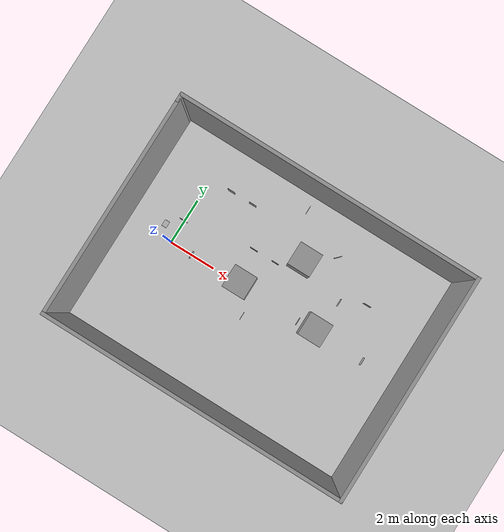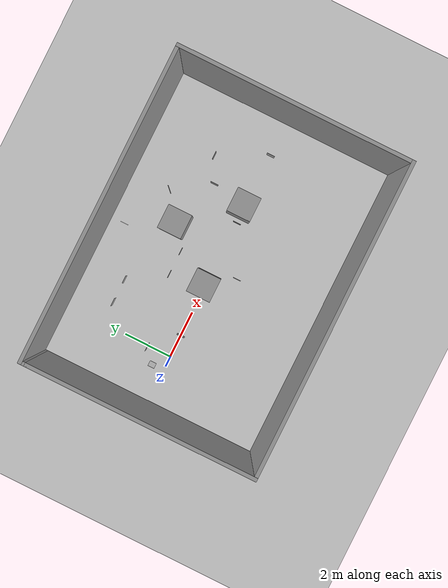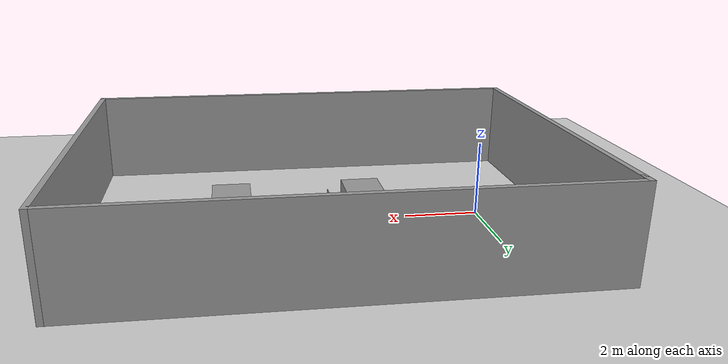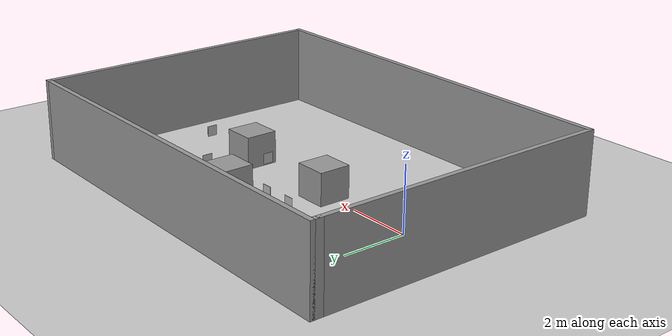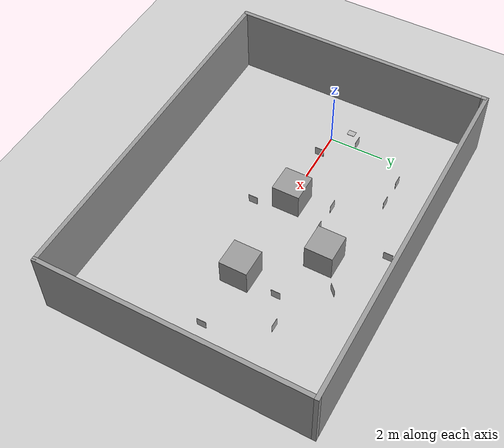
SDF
<sdf version="1.6">
 <world name="default">
  <light name="sun" type="directional">
   <pose>0 0 10 0 -0 0</pose>
   <diffuse>0.8 0.8 0.8 1</diffuse>
   <specular>0.2 0.2 0.2 1</specular>
   <attenuation>
    <range>1000</range>
    <constant>0.9</constant>
    <linear>0.01</linear>
    <quadratic>0.001</quadratic>
   </attenuation>
   <direction>-0.5 0.1 -0.9</direction>
  </light>
  <model name="ground_plane">
   <static>1</static>
   <link name="link">
    <collision name="collision">
     <geometry><plane><normal>0 0 1</normal><size>100 100</size></plane></geometry>
     <surface><friction><ode><mu>100</mu><mu2>50</mu2></ode></friction></surface>
    </collision>
    <visual name="visual">
     <cast_shadows>0</cast_shadows>
     <geometry><plane><normal>0 0 1</normal><size>100 100</size></plane></geometry>
     <material>
      <script><uri>file://media/materials/scripts/gazebo.material</uri><name>Gazebo/Grey</name></script>
     </material>
    </visual>
   </link>
  </model>
  <gravity>0 0 -9.8</gravity>
  <magnetic_field>6e-06 2.3e-05 -4.2e-05</magnetic_field>
  <atmosphere type="adiabatic"/>
  <physics name="default_physics" default="0" type="ode">
   <max_step_size>0.001</max_step_size>
   <real_time_factor>1</real_time_factor>
   <real_time_update_rate>1000</real_time_update_rate>
  </physics>
  <scene><ambient>0.4 0.4 0.4 1</ambient><background>0.7 0.7 0.7 1</background><shadows>1</shadows></scene>
  <audio><device>default</device></audio>
  <spherical_coordinates>
   <surface_model>EARTH_WGS84</surface_model>
   <latitude_deg>0</latitude_deg>
   <longitude_deg>0</longitude_deg>
   <elevation>0</elevation>
   <heading_deg>0</heading_deg>
  </spherical_coordinates>
  <model name="tablero">
   <static>1</static>
   <link name="robot_link">
    <visual name="front_visual">
     <pose>0 0 0.0025 0 -0 0</pose>
     <geometry><box><size>0.22 0.28 0.005</size></box></geometry>
     <material>
      <script>
       <uri>model://tag_0/materials/scripts</uri>
       <uri>model://tag_0/materials/textures</uri>
       <name>patron_aje</name>
      </script>
     </material>
    </visual>
    <visual name="rear_visual">
     <pose>0 0 -0.0025 0 -0 0</pose>
     <geometry><box><size>0.22 0.28 0.005</size></box></geometry>
     <material>
      <script>
       <uri>model://tag_0/materials/scripts</uri>
       <uri>model://tag_0/materials/textures</uri>
       <name>patron_aje</name>
      </script>
     </material>
    </visual>
   </link>
   <pose>-0.604925 0.518921 0 0 -0 0</pose>
  </model>
  <model name="Aruco tag0">
   <static>1</static>
   <link name="robot_link">
    <visual name="front_visual">
     <pose>0 0 0.0025 0 -0 0</pose>
     <geometry><box><size>0.33 0.33 0.005</size></box></geometry>
     <material>
      <script>
       <uri>model://tag_0/materials/scripts</uri>
       <uri>model://tag_0/materials/textures</uri>
       <name>aruco_tag_0</name>
      </script>
     </material>
    </visual>
    <visual name="rear_visual">
     <pose>0 0 -0.0025 0 -0 0</pose>
     <geometry><box><size>0.33 0.33 0.005</size></box></geometry>
     <material>
      <script>
       <uri>model://tag_0/materials/scripts</uri>
       <uri>model://tag_0/materials/textures</uri>
       <name>aruco_tag_0</name>
      </script>
     </material>
    </visual>
   </link>
   <pose>1 0 0.3 -1.57 -1.57 1.57</pose>
  </model>
  <model name="Aruco tag1">
   <static>1</static>
   <link name="robot_link">
    <visual name="front_visual">
     <pose>0 0 0.0025 0 -0 0</pose>
     <geometry><box><size>0.33 0.33 0.005</size></box></geometry>
     <material>
      <script>
       <uri>model://tag_1/materials/scripts</uri>
       <uri>model://tag_1/materials/textures</uri>
       <name>aruco_tag_1</name>
      </script>
     </material>
    </visual>
    <visual name="rear_visual">
     <pose>0 0 -0.0025 0 -0 0</pose>
     <geometry><box><size>0.33 0.33 0.005</size></box></geometry>
     <material>
      <script>
       <uri>model://tag_1/materials/scripts</uri>
       <uri>model://tag_1/materials/textures</uri>
       <name>aruco_tag_1</name>
      </script>
     </material>
    </visual>
   </link>
   <pose>4 -1 0.3 -1.57 -1.57 1.57</pose>
  </model>
  <model name="Aruco tag2">
   <static>1</static>
   <link name="robot_link">
    <visual name="front_visual">
     <pose>0 0 0.0025 0 -0 0</pose>
     <geometry><box><size>0.33 0.33 0.005</size></box></geometry>
     <material>
      <script>
       <uri>model://tag_2/materials/scripts</uri>
       <uri>model://tag_2/materials/textures</uri>
       <name>aruco_tag_2</name>
      </script>
     </material>
    </visual>
    <visual name="rear_visual">
     <pose>0 0 -0.0025 0 -0 0</pose>
     <geometry><box><size>0.33 0.33 0.005</size></box></geometry>
     <material>
      <script>
       <uri>model://tag_2/materials/scripts</uri>
       <uri>model://tag_2/materials/textures</uri>
       <name>aruco_tag_2</name>
      </script>
     </material>
    </visual>
   </link>
   <pose>6 0 0.3 -1.57 -1.57 1.57</pose>
  </model>
  <model name="Aruco tag4">
   <static>1</static>
   <link name="robot_link">
    <visual name="front_visual">
     <pose>0 0 0.0025 0 -0 0</pose>
     <geometry><box><size>0.33 0.33 0.005</size></box></geometry>
     <material>
      <script>
       <uri>model://tag_4/materials/scripts</uri>
       <uri>model://tag_4/materials/textures</uri>
       <name>aruco_tag_4</name>
      </script>
     </material>
    </visual>
    <visual name="rear_visual">
     <pose>0 0 -0.0025 0 -0 0</pose>
     <geometry><box><size>0.33 0.33 0.005</size></box></geometry>
     <material>
      <script>
       <uri>model://tag_4/materials/scripts</uri>
       <uri>model://tag_4/materials/textures</uri>
       <name>aruco_tag_4</name>
      </script>
     </material>
    </visual>
   </link>
   <pose>9 0 0.3 -1.57 -1.57 1.57</pose>
  </model>
  <model name="Aruco tag5">
   <static>1</static>
   <link name="robot_link">
    <visual name="front_visual">
     <pose>0 0 0.0025 0 -0 0</pose>
     <geometry><box><size>0.33 0.33 0.005</size></box></geometry>
     <material>
      <script>
       <uri>model://tag_5/materials/scripts</uri>
       <uri>model://tag_5/materials/textures</uri>
       <name>aruco_tag_5</name>
      </script>
     </material>
    </visual>
    <visual name="rear_visual">
     <pose>0 0 -0.0025 0 -0 0</pose>
     <geometry><box><size>0.33 0.33 0.005</size></box></geometry>
     <material>
      <script>
       <uri>model://tag_5/materials/scripts</uri>
       <uri>model://tag_5/materials/textures</uri>
       <name>aruco_tag_5</name>
      </script>
     </material>
    </visual>
   </link>
   <pose>8 2 0.3 -1.57 -1.57 0</pose>
  </model>
  <model name="Aruco tag6">
   <static>1</static>
   <link name="robot_link">
    <visual name="front_visual">
     <pose>0 0 0.0025 0 -0 0</pose>
     <geometry><box><size>0.33 0.33 0.005</size></box></geometry>
     <material>
      <script>
       <uri>model://tag_6/materials/scripts</uri>
       <uri>model://tag_6/materials/textures</uri>
       <name>aruco_tag_6</name>
      </script>
     </material>
    </visual>
    <visual name="rear_visual">
     <pose>0 0 -0.0025 0 -0 0</pose>
     <geometry><box><size>0.33 0.33 0.005</size></box></geometry>
     <material>
      <script>
       <uri>model://tag_6/materials/scripts</uri>
       <uri>model://tag_6/materials/textures</uri>
       <name>aruco_tag_6</name>
      </script>
     </material>
    </visual>
   </link>
   <pose>7 1.5 0.3 -1.57 -1.57 -1.57</pose>
  </model>
  <model name="Aruco tag7">
   <static>1</static>
   <link name="robot_link">
    <visual name="front_visual">
     <pose>0 0 0.0025 0 -0 0</pose>
     <geometry><box><size>0.33 0.33 0.005</size></box></geometry>
     <material>
      <script>
       <uri>model://tag_7/materials/scripts</uri>
       <uri>model://tag_7/materials/textures</uri>
       <name>aruco_tag_7</name>
      </script>
     </material>
    </visual>
    <visual name="rear_visual">
     <pose>0 0 -0.0025 0 -0 0</pose>
     <geometry><box><size>0.33 0.33 0.005</size></box></geometry>
     <material>
      <script>
       <uri>model://tag_7/materials/scripts</uri>
       <uri>model://tag_7/materials/textures</uri>
       <name>aruco_tag_7</name>
      </script>
     </material>
    </visual>
   </link>
   <pose>6 3 0.3 -1.57 -1.57 0.785</pose>
  </model>
  <model name="Aruco tag8">
   <static>1</static>
   <link name="robot_link">
    <visual name="front_visual">
     <pose>0 0 0.0025 0 -0 0</pose>
     <geometry><box><size>0.33 0.33 0.005</size></box></geometry>
     <material>
      <script>
       <uri>model://tag_8/materials/scripts</uri>
       <uri>model://tag_8/materials/textures</uri>
       <name>aruco_tag_8</name>
      </script>
     </material>
    </visual>
    <visual name="rear_visual">
     <pose>0 0 -0.0025 0 -0 0</pose>
     <geometry><box><size>0.33 0.33 0.005</size></box></geometry>
     <material>
      <script>
       <uri>model://tag_8/materials/scripts</uri>
       <uri>model://tag_8/materials/textures</uri>
       <name>aruco_tag_8</name>
      </script>
     </material>
    </visual>
   </link>
   <pose>4 4 0.3 -1.57 -1.57 1.57</pose>
  </model>
  <model name="Aruco tag9">
   <static>1</static>
   <link name="robot_link">
    <visual name="front_visual">
     <pose>0 0 0.0025 0 -0 0</pose>
     <geometry><box><size>0.33 0.33 0.005</size></box></geometry>
     <material>
      <script>
       <uri>model://tag_9/materials/scripts</uri>
       <uri>model://tag_9/materials/textures</uri>
       <name>aruco_tag_9</name>
      </script>
     </material>
    </visual>
    <visual name="rear_visual">
     <pose>0 0 -0.0025 0 -0 0</pose>
     <geometry><box><size>0.33 0.33 0.005</size></box></geometry>
     <material>
      <script>
       <uri>model://tag_9/materials/scripts</uri>
       <uri>model://tag_9/materials/textures</uri>
       <name>aruco_tag_9</name>
      </script>
     </material>
    </visual>
   </link>
   <pose>4 1.5 0.3 -1.57 -1.57 0</pose>
  </model>
  <model name="Aruco tag10">
   <static>1</static>
   <link name="robot_link">
    <visual name="front_visual">
     <pose>0 0 0.0025 0 -0 0</pose>
     <geometry><box><size>0.33 0.33 0.005</size></box></geometry>
     <material>
      <script>
       <uri>model://tag_10/materials/scripts</uri>
       <uri>model://tag_10/materials/textures</uri>
       <name>aruco_tag_10</name>
      </script>
     </material>
    </visual>
    <visual name="rear_visual">
     <pose>0 0 -0.0025 0 -0 0</pose>
     <geometry><box><size>0.33 0.33 0.005</size></box></geometry>
     <material>
      <script>
       <uri>model://tag_10/materials/scripts</uri>
       <uri>model://tag_10/materials/textures</uri>
       <name>aruco_tag_10</name>
      </script>
     </material>
    </visual>
   </link>
   <pose>0 1 0.3 -1.57 -1.57 0</pose>
  </model>
  <model name="Aruco tag11">
   <static>1</static>
   <link name="robot_link">
    <visual name="front_visual">
     <pose>0 0 0.0025 0 -0 0</pose>
     <geometry><box><size>0.33 0.33 0.005</size></box></geometry>
     <material>
      <script>
       <uri>model://tag_11/materials/scripts</uri>
       <uri>model://tag_11/materials/textures</uri>
       <name>aruco_tag_11</name>
      </script>
     </material>
    </visual>
    <visual name="rear_visual">
     <pose>0 0 -0.0025 0 -0 0</pose>
     <geometry><box><size>0.33 0.33 0.005</size></box></geometry>
     <material>
      <script>
       <uri>model://tag_11/materials/scripts</uri>
       <uri>model://tag_11/materials/textures</uri>
       <name>aruco_tag_11</name>
      </script>
     </material>
    </visual>
   </link>
   <pose>3 1.5 0.3 -1.57 -1.57 0</pose>
  </model>
  <model name="Aruco tag12">
   <static>1</static>
   <link name="robot_link">
    <visual name="front_visual">
     <pose>0 0 0.0025 0 -0 0</pose>
     <geometry><box><size>0.33 0.33 0.005</size></box></geometry>
     <material>
      <script>
       <uri>model://tag_12/materials/scripts</uri>
       <uri>model://tag_12/materials/textures</uri>
       <name>aruco_tag_12</name>
      </script>
     </material>
    </visual>
    <visual name="rear_visual">
     <pose>0 0 -0.0025 0 -0 0</pose>
     <geometry><box><size>0.33 0.33 0.005</size></box></geometry>
     <material>
      <script>
       <uri>model://tag_12/materials/scripts</uri>
       <uri>model://tag_12/materials/textures</uri>
       <name>aruco_tag_12</name>
      </script>
     </material>
    </visual>
   </link>
   <pose>2 3 0.3 -1.57 -1.57 0</pose>
  </model>
  <model name="Aruco tag13">
   <static>1</static>
   <link name="robot_link">
    <visual name="front_visual">
     <pose>0 0 0.0025 0 -0 0</pose>
     <geometry><box><size>0.33 0.33 0.005</size></box></geometry>
     <material>
      <script>
       <uri>model://tag_13/materials/scripts</uri>
       <uri>model://tag_13/materials/textures</uri>
       <name>aruco_tag_13</name>
      </script>
     </material>
    </visual>
    <visual name="rear_visual">
     <pose>0 0 -0.0025 0 -0 0</pose>
     <geometry><box><size>0.33 0.33 0.005</size></box></geometry>
     <material>
      <script>
       <uri>model://tag_13/materials/scripts</uri>
       <uri>model://tag_13/materials/textures</uri>
       <name>aruco_tag_13</name>
      </script>
     </material>
    </visual>
   </link>
   <pose>1 3 0.3 -1.57 -1.57 0</pose>
  </model>
  <model name="unit_box">
   <pose>3.23731 0.085147 0.499995 0 1e-05 0</pose>
   <link name="link">
    <inertial>
     <mass>1</mass>
     <inertia>
      <ixx>0.166667</ixx>
      <ixy>0</ixy>
      <ixz>0</ixz>
      <iyy>0.166667</iyy>
      <iyz>0</iyz>
      <izz>0.166667</izz>
     </inertia>
    </inertial>
    <collision name="collision"><geometry><box><size>1 1 1</size></box></geometry></collision>
    <visual name="visual">
     <geometry><box><size>1 1 1</size></box></geometry>
     <material>
      <script><name>Gazebo/Grey</name><uri>file://media/materials/scripts/gazebo.material</uri></script>
     </material>
    </visual>
   </link>
  </model>
  <model name="unit_box_0">
   <pose>4.92688 2.16986 0.499995 0 1e-05 0</pose>
   <link name="link">
    <inertial>
     <mass>1</mass>
     <inertia>
      <ixx>0.166667</ixx>
      <ixy>0</ixy>
      <ixz>0</ixz>
      <iyy>0.166667</iyy>
      <iyz>0</iyz>
      <izz>0.166667</izz>
     </inertia>
    </inertial>
    <collision name="collision"><geometry><box><size>1 1 1</size></box></geometry></collision>
    <visual name="visual">
     <geometry><box><size>1 1 1</size></box></geometry>
     <material>
      <script><name>Gazebo/Grey</name><uri>file://media/materials/scripts/gazebo.material</uri></script>
     </material>
    </visual>
   </link>
  </model>
  <model name="unit_box_1">
   <pose>6.70308 0.075252 0.499995 0 1e-05 0</pose>
   <link name="link">
    <inertial>
     <mass>1</mass>
     <inertia>
      <ixx>0.166667</ixx>
      <ixy>0</ixy>
      <ixz>0</ixz>
      <iyy>0.166667</iyy>
      <iyz>0</iyz>
      <izz>0.166667</izz>
     </inertia>
    </inertial>
    <collision name="collision"><geometry><box><size>1 1 1</size></box></geometry></collision>
    <visual name="visual">
     <geometry><box><size>1 1 1</size></box></geometry>
     <material>
      <script><name>Gazebo/Grey</name><uri>file://media/materials/scripts/gazebo.material</uri></script>
     </material>
    </visual>
   </link>
  </model>
  <model name="room">
   <pose>4.24574 0.022451 0 0 -0 0</pose>
   <link name="Wall_23">
    <collision name="Wall_23_Collision">
     <geometry><box><size>9.25 0.15 2.5</size></box></geometry>
     <pose>0 0 1.25 0 -0 0</pose>
    </collision>
    <visual name="Wall_23_Visual">
     <pose>0 0 1.25 0 -0 0</pose>
     <geometry><box><size>9.25 0.15 2.5</size></box></geometry>
     <material>
      <script><uri>file://media/materials/scripts/gazebo.material</uri><name>Gazebo/Grey</name></script>
      <ambient>1 1 1 1</ambient>
     </material>
     <meta><layer>0</layer></meta>
    </visual>
    <pose>-6.3 -0.125 0 0 -0 -1.5708</pose>
   </link>
   <link name="Wall_24">
    <collision name="Wall_24_Collision">
     <geometry><box><size>12.75 0.15 2.5</size></box></geometry>
     <pose>0 0 1.25 0 -0 0</pose>
    </collision>
    <visual name="Wall_24_Visual">
     <pose>0 0 1.25 0 -0 0</pose>
     <geometry><box><size>12.75 0.15 2.5</size></box></geometry>
     <material>
      <script><uri>file://media/materials/scripts/gazebo.material</uri><name>Gazebo/Grey</name></script>
      <ambient>1 1 1 1</ambient>
     </material>
     <meta><layer>0</layer></meta>
    </visual>
    <pose>-0 -4.675 0 0 -0 0</pose>
   </link>
   <link name="Wall_25">
    <collision name="Wall_25_Collision">
     <geometry><box><size>9.5 0.15 2.5</size></box></geometry>
     <pose>0 0 1.25 0 -0 0</pose>
    </collision>
    <visual name="Wall_25_Visual">
     <pose>0 0 1.25 0 -0 0</pose>
     <geometry><box><size>9.5 0.15 2.5</size></box></geometry>
     <material>
      <script><uri>file://media/materials/scripts/gazebo.material</uri><name>Gazebo/Grey</name></script>
      <ambient>1 1 1 1</ambient>
     </material>
     <meta><layer>0</layer></meta>
    </visual>
    <pose>6.3 0 0 0 -0 1.5708</pose>
   </link>
   <link name="Wall_26">
    <collision name="Wall_26_Collision">
     <geometry><box><size>12.75 0.15 2.5</size></box></geometry>
     <pose>0 0 1.25 0 -0 0</pose>
    </collision>
    <visual name="Wall_26_Visual">
     <pose>0 0 1.25 0 -0 0</pose>
     <geometry><box><size>12.75 0.15 2.5</size></box></geometry>
     <material>
      <script><uri>file://media/materials/scripts/gazebo.material</uri><name>Gazebo/Grey</name></script>
      <ambient>1 1 1 1</ambient>
     </material>
     <meta><layer>0</layer></meta>
    </visual>
    <pose>-0 4.675 0 0 -0 3.14159</pose>
   </link>
   <link name="Wall_27">
    <collision name="Wall_27_Collision">
     <geometry><box><size>0.4 0.15 2.5</size></box></geometry>
     <pose>0 0 1.25 0 -0 0</pose>
    </collision>
    <visual name="Wall_27_Visual">
     <pose>0 0 1.25 0 -0 0</pose>
     <geometry><box><size>0.4 0.15 2.5</size></box></geometry>
     <material>
      <script><uri>file://media/materials/scripts/gazebo.material</uri><name>Gazebo/Grey</name></script>
      <ambient>1 1 1 1</ambient>
     </material>
     <meta><layer>0</layer></meta>
    </visual>
    <pose>-6.3 4.55 0 0 -0 -1.5708</pose>
   </link>
   <static>1</static>
  </model>
 </world>
</sdf>
